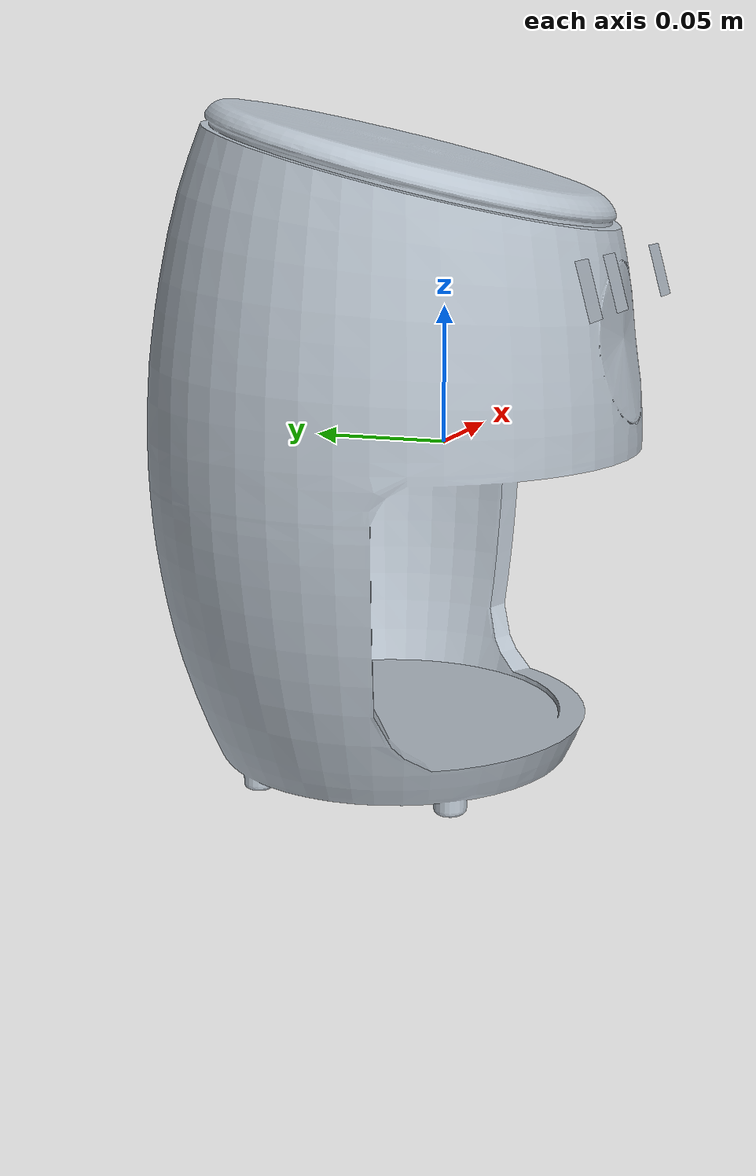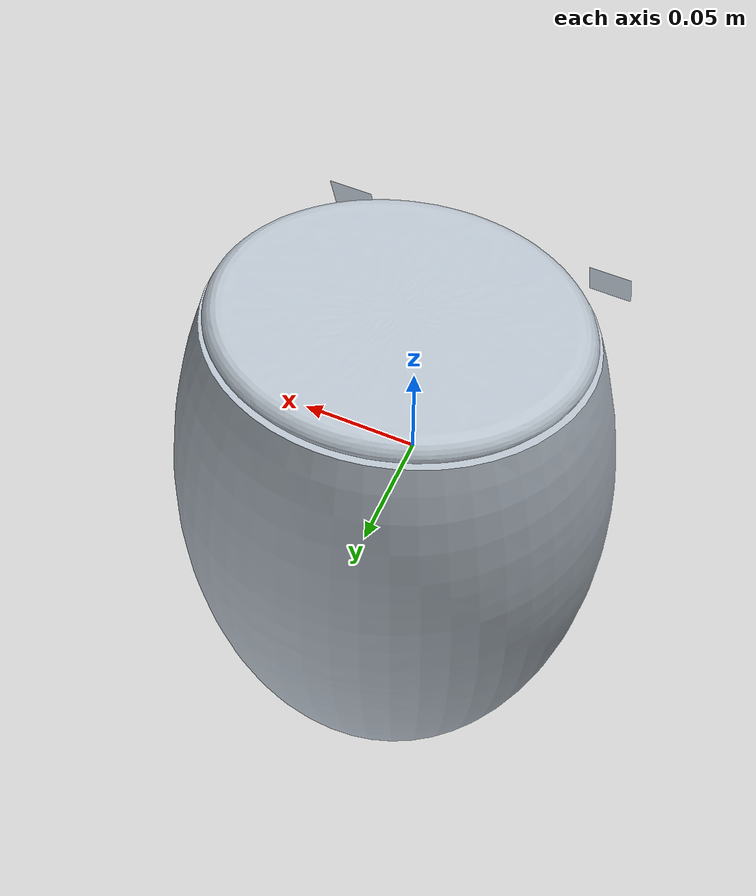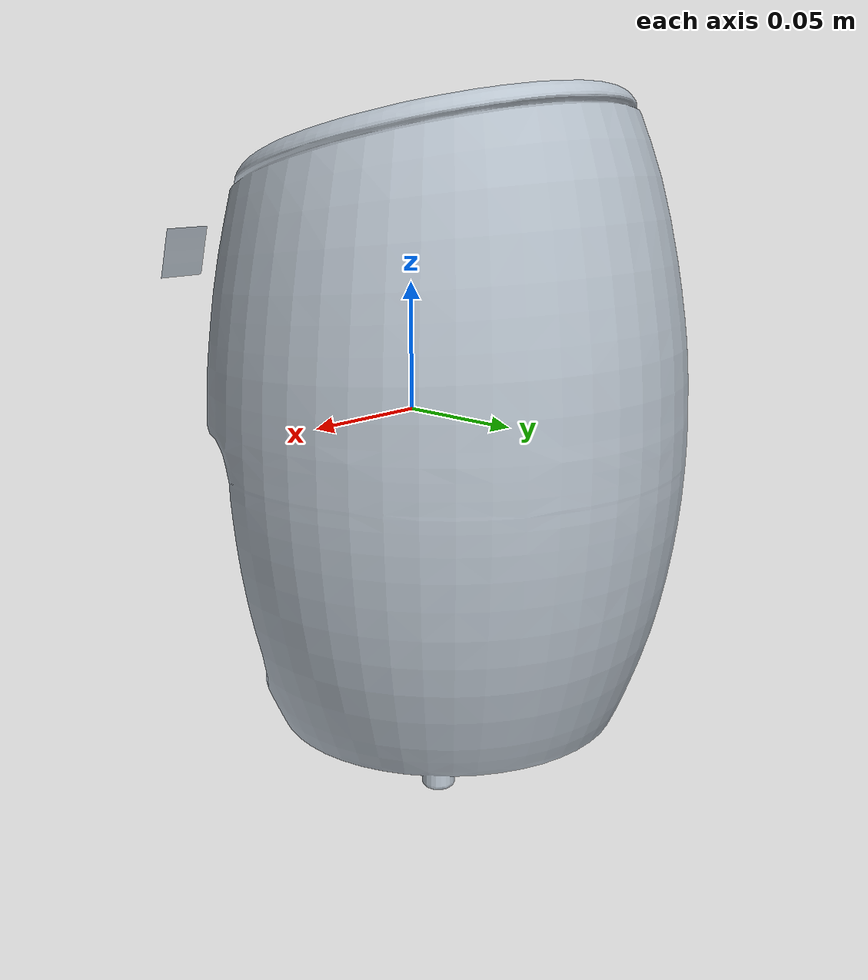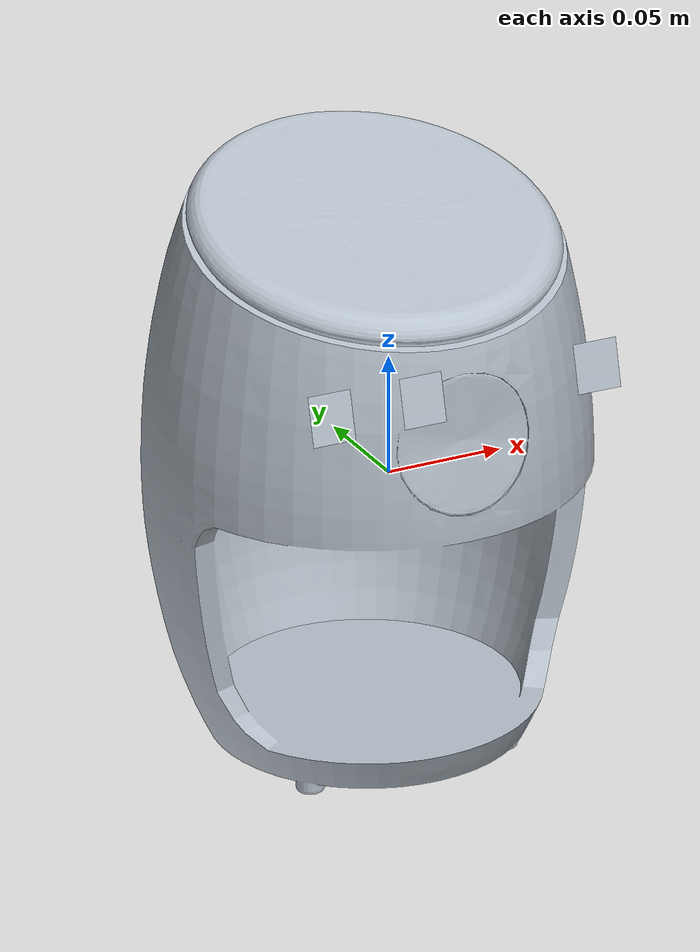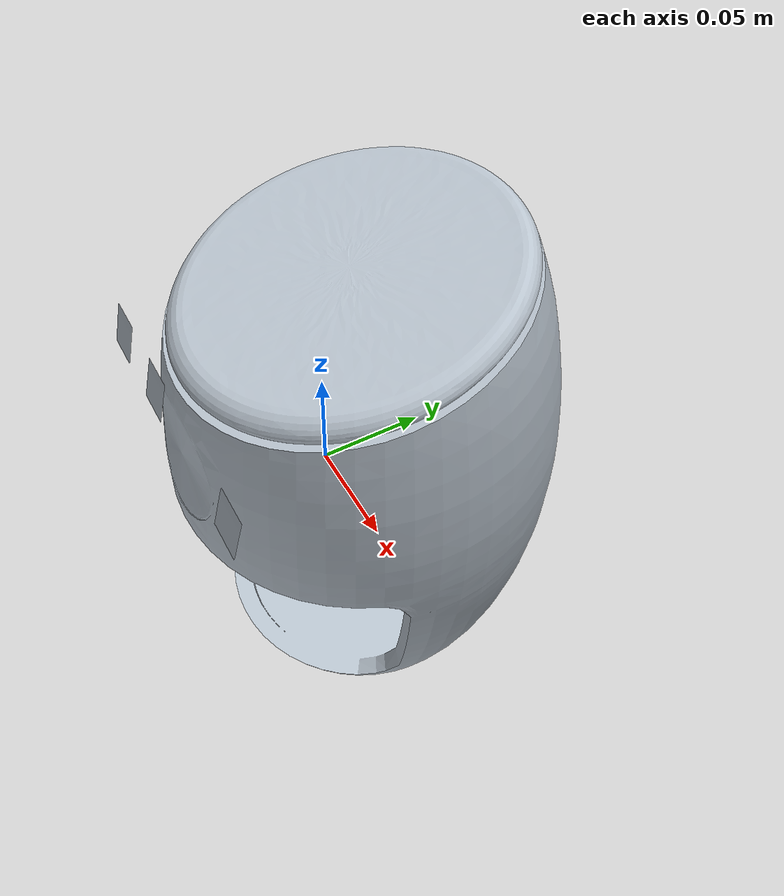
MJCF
<mujoco model="ra_063">
  <compiler angle="radian" meshdir="." />
  <default>
    <geom type="mesh" group="2" contype="0" conaffinity="0" rgba="0.72 0.76 0.80 1" />
  </default>
  <asset>
    <mesh name="body_mesh" file="assets/body.obj" />
    <mesh name="part_00_mesh" file="assets/part_00.obj" />
    <mesh name="part_01_mesh" file="assets/part_01.obj" />
    <mesh name="part_02_mesh" file="assets/part_02.obj" />
  </asset>
  <worldbody>
    <body name="body" pos="0 0 0">
      <geom name="body_visual" mesh="body_mesh" group="2" contype="0" conaffinity="0" />
      <body name="part_00" pos="0 0 0">
        <joint name="part_00" type="hinge" pos="0 -0.0260000005 0.0989999995" axis="0 0.258819045 0.965925826" range="0 0.523598776" limited="true" />
        <geom name="part_00_visual" mesh="part_00_mesh" group="2" contype="0" conaffinity="0" />
      </body>
      <body name="part_01" pos="0 0 0">
        <joint name="part_01" type="hinge" pos="0 -0.0700000003 0.0399999991" axis="0.965925826 0.258819045 0" range="-5.75958653 6.28318531" limited="true" />
        <geom name="part_01_visual" mesh="part_01_mesh" group="2" contype="0" conaffinity="0" />
      </body>
      <body name="part_02" pos="0 0 0">
        <joint name="part_02" type="slide" pos="0 -0.0109999999 -0.0540000014" axis="0.965925826 -0.258819045 0" range="0 0.06" limited="true" />
        <geom name="part_02_visual" mesh="part_02_mesh" group="2" contype="0" conaffinity="0" />
      </body>
    </body>
  </worldbody>
</mujoco>
